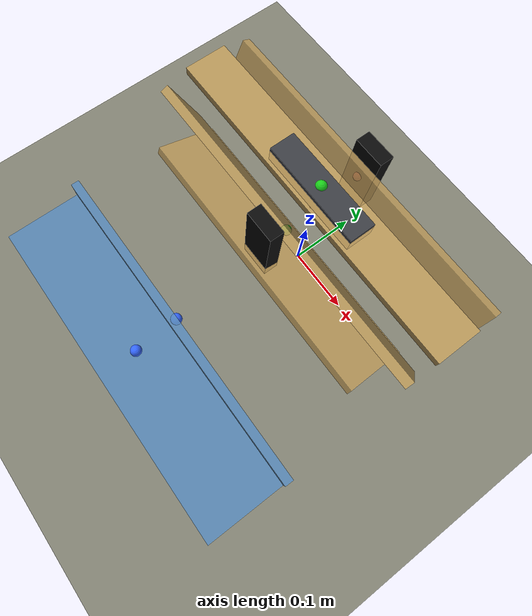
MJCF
<mujoco model="open_panel_support_prototype">
  <compiler angle="degree" inertiafromgeom="true" autolimits="true"/>

  <option timestep="0.001" solver="Newton" iterations="80" tolerance="1e-9"
          cone="elliptic" impratio="5" noslip_iterations="2"/>

  <size njmax="500" nconmax="300"/>

  <visual>
    <global azimuth="135" elevation="-25" offwidth="1280" offheight="720"/>
    <quality shadowsize="2048"/>
  </visual>

  <asset>
    <texture name="tex_floor" type="2d" builtin="checker" width="512" height="512"
             rgb1="0.72 0.72 0.68" rgb2="0.62 0.62 0.58"/>
    <material name="mat_floor" texture="tex_floor" texrepeat="3 3" rgba="0.75 0.75 0.70 1"/>
    <material name="mat_panel" rgba="0.78 0.64 0.38 0.88"/>
    <material name="mat_panel_edge" rgba="0.95 0.58 0.10 1"/>
    <material name="mat_hidden_mass" rgba="0.78 0.12 0.08 0.48"/>
    <material name="mat_scoop" rgba="0.35 0.55 0.75 0.86"/>
    <material name="mat_gripper" rgba="0.23 0.24 0.26 1"/>
    <material name="mat_pad" rgba="0.04 0.04 0.04 1"/>
    <material name="mat_site" rgba="0.1 0.8 0.1 1"/>
  </asset>

  <default>
    <geom condim="4" friction="1.1 0.04 0.004" solref="0.012 1" solimp="0.86 0.96 0.002"/>
    <joint damping="0.9" armature="0.002"/>
    <default class="panel">
      <geom type="box" material="mat_panel" density="280" contype="1" conaffinity="1"/>
      <joint type="hinge" limited="true" damping="1.4" stiffness="4.0" armature="0.004"/>
    </default>
    <default class="mass_slide">
      <joint type="slide" limited="true" damping="1.6" stiffness="0.25" armature="0.002"/>
      <geom type="ellipsoid" material="mat_hidden_mass" density="900" contype="1" conaffinity="1"/>
    </default>
  </default>

  <worldbody>
    <light name="key" pos="0 -1 1.6" dir="0.1 0.7 -1" diffuse="0.9 0.85 0.75"/>
    <camera name="overview" pos="0.52 -0.82 0.48" xyaxes="0.83 0.55 0 -0.25 0.38 0.89"/>
    <camera name="side" pos="0 -0.95 0.25" xyaxes="1 0 0 0 0.25 0.97"/>
    <geom name="floor" type="plane" size="1.2 1.2 0.02" material="mat_floor" condim="3"/>

    <!-- 열린 패널 surrogate의 기준 body. 전체 자루 pose는 freejoint로 움직인다. -->
    <body name="bag_frame" pos="0 0 0.155">
      <freejoint name="bag_frame_freejoint"/>

      <!-- 디버그용 hinge carrier. 실제 panel joint 축을 눈으로 확인하기 위한 표시이다. -->
      <geom name="top_hinge_bar" type="capsule" fromto="-0.235 0 0.063 0.235 0 0.063"
            size="0.006" material="mat_panel_edge" contype="0" conaffinity="0" group="4"/>
      <geom name="mid_hinge_bar" type="capsule" fromto="-0.235 0 0.003 0.235 0 0.003"
            size="0.005" material="mat_panel_edge" contype="0" conaffinity="0" group="4"/>
      <geom name="bottom_hinge_bar" type="capsule" fromto="-0.19 0 -0.047 0.19 0 -0.047"
            size="0.005" material="mat_panel_edge" contype="0" conaffinity="0" group="4"/>

      <!-- 5개 rigid panel. 각 panel은 자기 hinge 원점을 기준으로 회전한다. -->
      <body name="top_panel" pos="0 0 0.063">
        <joint name="hinge_top_panel" class="panel" axis="1 0 0" range="-16 18" springref="0"/>
        <geom name="geom_top_panel" class="panel" size="0.235 0.030 0.006" mass="0.035"/>
        <site name="site_top_center" pos="0 0 0.009" size="0.008" rgba="0.1 0.8 0.1 1"/>
      </body>

      <body name="left_side_panel" pos="0 0.034 0.057" euler="-24 0 0">
        <joint name="hinge_left_side_panel" class="panel" axis="1 0 0" range="-55 35" springref="0"/>
        <geom name="geom_left_side_panel" class="panel" pos="0 0.030 -0.045"
              size="0.235 0.006 0.057" mass="0.050"/>
        <site name="site_left_side_center" pos="0 0.030 -0.045" size="0.007" rgba="0.1 0.8 0.1 1"/>
      </body>

      <body name="right_side_panel" pos="0 -0.034 0.057" euler="24 0 0">
        <joint name="hinge_right_side_panel" class="panel" axis="1 0 0" range="-35 55" springref="0"/>
        <geom name="geom_right_side_panel" class="panel" pos="0 -0.030 -0.045"
              size="0.235 0.006 0.057" mass="0.050"/>
        <site name="site_right_side_center" pos="0 -0.030 -0.045" size="0.007" rgba="0.1 0.8 0.1 1"/>
      </body>

      <body name="left_bottom_panel" pos="0 0.090 0.000" euler="-70 0 0">
        <joint name="hinge_left_bottom_panel" class="panel" axis="1 0 0" range="-45 55" springref="0"/>
        <geom name="geom_left_bottom_panel" class="panel" pos="0 0.020 -0.038"
              size="0.205 0.006 0.047" mass="0.045"/>
        <site name="site_left_bottom_center" pos="0 0.020 -0.038" size="0.007" rgba="0.1 0.8 0.1 1"/>
      </body>

      <body name="right_bottom_panel" pos="0 -0.090 0.000" euler="70 0 0">
        <joint name="hinge_right_bottom_panel" class="panel" axis="1 0 0" range="-55 45" springref="0"/>
        <geom name="geom_right_bottom_panel" class="panel" pos="0 -0.020 -0.038"
              size="0.205 0.006 0.047" mass="0.045"/>
        <site name="site_right_bottom_center" pos="0 -0.020 -0.038" size="0.007" rgba="0.1 0.8 0.1 1"/>
      </body>

      <!-- Hidden 3-clump fill surrogate. 각 clump는 bag_frame 기준 3축 slide로만 움직인다. -->
      <body name="hidden_mass_C" pos="0 0 -0.010">
        <joint name="hidden_mass_C_slide_x" class="mass_slide" axis="1 0 0" range="-0.12 0.12"/>
        <joint name="hidden_mass_C_slide_y" class="mass_slide" axis="0 1 0" range="-0.055 0.055"/>
        <joint name="hidden_mass_C_slide_z" class="mass_slide" axis="0 0 1" range="-0.048 0.025"/>
        <geom name="geom_hidden_mass_C" class="mass_slide" size="0.045 0.030 0.023" mass="0.16" group="3"/>
      </body>
      <body name="hidden_mass_L" pos="-0.075 0.018 -0.020">
        <joint name="hidden_mass_L_slide_x" class="mass_slide" axis="1 0 0" range="-0.055 0.080"/>
        <joint name="hidden_mass_L_slide_y" class="mass_slide" axis="0 1 0" range="-0.040 0.065"/>
        <joint name="hidden_mass_L_slide_z" class="mass_slide" axis="0 0 1" range="-0.045 0.025"/>
        <geom name="geom_hidden_mass_L" class="mass_slide" size="0.034 0.026 0.020" mass="0.095" group="3"/>
      </body>
      <body name="hidden_mass_R" pos="0.075 -0.018 -0.020">
        <joint name="hidden_mass_R_slide_x" class="mass_slide" axis="1 0 0" range="-0.080 0.055"/>
        <joint name="hidden_mass_R_slide_y" class="mass_slide" axis="0 1 0" range="-0.065 0.040"/>
        <joint name="hidden_mass_R_slide_z" class="mass_slide" axis="0 0 1" range="-0.045 0.025"/>
        <geom name="geom_hidden_mass_R" class="mass_slide" size="0.034 0.026 0.020" mass="0.095" group="3"/>
      </body>
    </body>

    <!-- Scoop은 단일 slide joint로 천천히 삽입하며 depth/contact force를 기록한다. -->
    <body name="scoop_body" pos="0 -0.285 0.080">
      <joint name="scoop_insert" type="slide" axis="0 1 0" range="0 0.265"
             damping="2.5" armature="0.01" limited="true"/>
      <geom name="geom_scoop_plate" type="box" pos="0 0 0" size="0.245 0.058 0.006"
            material="mat_scoop" mass="0.20" condim="4" friction="1.0 0.03 0.003"/>
      <geom name="geom_scoop_lip" type="box" pos="0 0.061 0.018" size="0.245 0.006 0.018"
            material="mat_scoop" mass="0.04" condim="4" friction="1.0 0.03 0.003"/>
      <site name="site_scoop_tip" pos="0 0.066 0.026" size="0.008" rgba="0.2 0.4 1 1"/>
      <site name="site_scoop_center" pos="0 0 0.010" size="0.008" rgba="0.2 0.4 1 1"/>
    </body>

    <!-- 간단한 2F gripper. Guarded grasp는 Python에서 조건 통과 시 equality를 켠다. -->
    <body name="gripper_palm" pos="0 0 0.185">
      <joint name="gripper_lift" type="slide" axis="0 0 1" range="-0.035 0.090"
             damping="2.5" armature="0.01" limited="true"/>
      <geom name="geom_gripper_palm" type="box" pos="0 0 0.033" size="0.075 0.018 0.012"
            material="mat_gripper" mass="0.08" contype="0" conaffinity="0"/>
      <site name="site_gripper_center" pos="0 0 0" size="0.009" rgba="1 0 0 1"/>

      <body name="left_finger" pos="0 0.082 0.000">
        <joint name="left_finger_close" type="slide" axis="0 -1 0" range="0 0.060"
               damping="3.5" armature="0.01" limited="true"/>
        <geom name="geom_left_finger_pad" type="box" pos="0 0 -0.008" size="0.022 0.010 0.055"
              material="mat_pad" mass="0.04" condim="4" friction="1.8 0.06 0.006"/>
        <site name="site_left_pad_inner" pos="0 -0.011 -0.008" size="0.006" rgba="1 0.2 0.2 1"/>
      </body>

      <body name="right_finger" pos="0 -0.082 0.000">
        <joint name="right_finger_close" type="slide" axis="0 1 0" range="0 0.060"
               damping="3.5" armature="0.01" limited="true"/>
        <geom name="geom_right_finger_pad" type="box" pos="0 0 -0.008" size="0.022 0.010 0.055"
              material="mat_pad" mass="0.04" condim="4" friction="1.8 0.06 0.006"/>
        <site name="site_right_pad_inner" pos="0 0.011 -0.008" size="0.006" rgba="1 0.2 0.2 1"/>
      </body>
    </body>
  </worldbody>

  <equality>
    <!-- Panel edge coherence: 완전 고정이 아니라 soft connect로 열린 단면을 유지한다. -->
    <connect name="connect_top_left_edge" body1="top_panel" body2="left_side_panel"
             anchor="0 0.034 0.212" solref="0.050 1" solimp="0.80 0.94 0.002"/>
    <connect name="connect_top_right_edge" body1="top_panel" body2="right_side_panel"
             anchor="0 -0.034 0.212" solref="0.050 1" solimp="0.80 0.94 0.002"/>
    <connect name="connect_left_lower_edge" body1="left_side_panel" body2="left_bottom_panel"
             anchor="0 0.090 0.154" solref="0.060 1" solimp="0.78 0.92 0.003"/>
    <connect name="connect_right_lower_edge" body1="right_side_panel" body2="right_bottom_panel"
             anchor="0 -0.090 0.154" solref="0.060 1" solimp="0.78 0.92 0.003"/>
    <connect name="connect_bottom_center_edge" body1="left_bottom_panel" body2="right_bottom_panel"
             anchor="0 0 0.112" solref="0.070 1" solimp="0.72 0.90 0.004"/>

    <!-- Guarded grasp latch. Python에서 조건을 만족할 때만 data.eq_active로 활성화한다. -->
    <connect name="guarded_grasp_connect" body1="gripper_palm" body2="top_panel"
             anchor="0 0 0.135" solref="0.085 1" solimp="0.55 0.85 0.010"/>
  </equality>

  <actuator>
    <position name="scoop_insert_act" joint="scoop_insert" kp="90" ctrllimited="true" ctrlrange="0 0.265"/>
    <position name="gripper_lift_act" joint="gripper_lift" kp="90" ctrllimited="true" ctrlrange="-0.035 0.090"/>
    <position name="left_finger_close_act" joint="left_finger_close" kp="70" ctrllimited="true" ctrlrange="0 0.060"/>
    <position name="right_finger_close_act" joint="right_finger_close" kp="70" ctrllimited="true" ctrlrange="0 0.060"/>
  </actuator>
</mujoco>
